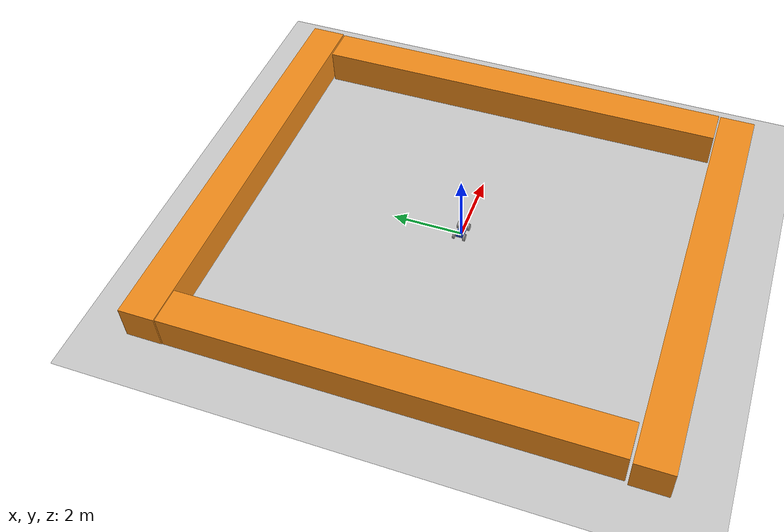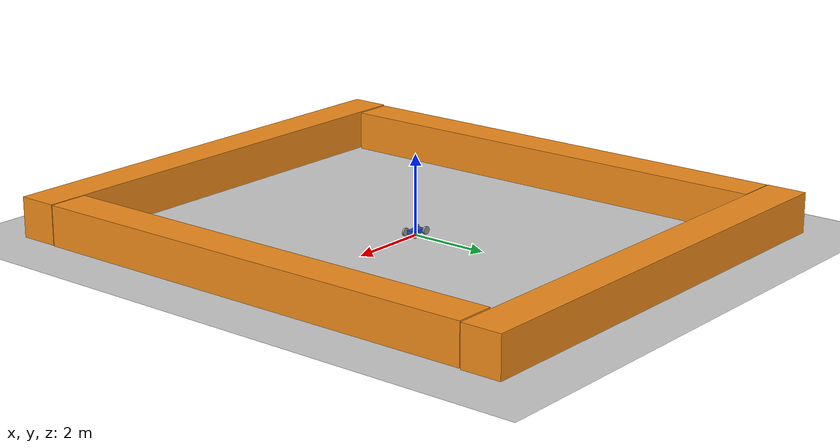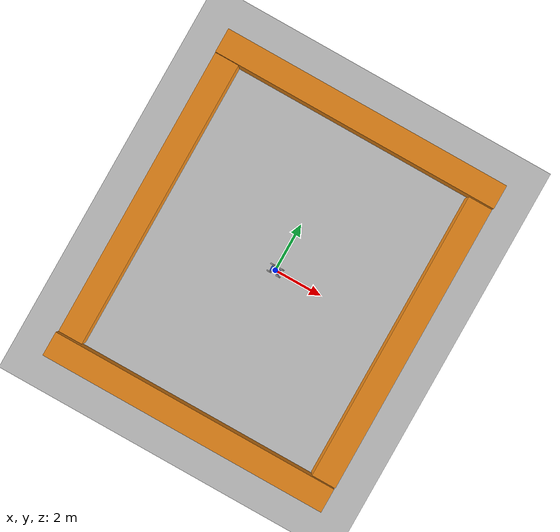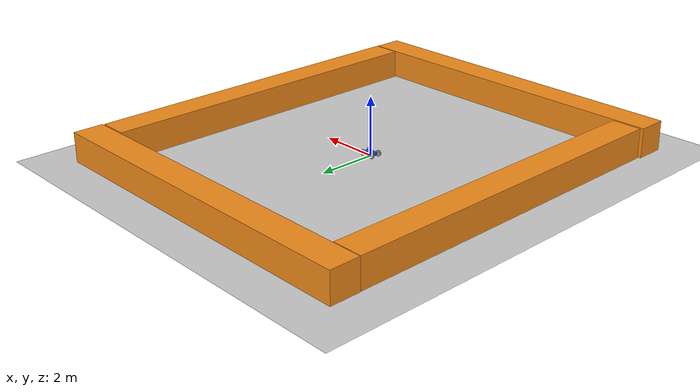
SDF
<sdf version="1.6">
 <world name="default">
  <light name="sun" type="directional">
   <pose>0 0 10 0 -0 0</pose>
   <diffuse>0.8 0.8 0.8 1</diffuse>
   <specular>0.2 0.2 0.2 1</specular>
   <attenuation>
    <range>1000</range>
    <constant>0.9</constant>
    <linear>0.01</linear>
    <quadratic>0.001</quadratic>
   </attenuation>
   <direction>-0.5 0.1 -0.9</direction>
  </light>
  <model name="ground_plane">
   <static>1</static>
   <link name="link">
    <collision name="collision">
     <geometry><plane><normal>0 0 1</normal><size>100 100</size></plane></geometry>
     <surface>
      <contact><collide_bitmask>65535</collide_bitmask></contact>
      <friction><ode><mu>100</mu><mu2>50</mu2></ode></friction>
     </surface>
    </collision>
    <visual name="visual">
     <cast_shadows>0</cast_shadows>
     <geometry><plane><normal>0 0 1</normal><size>100 100</size></plane></geometry>
     <material>
      <script><uri>file://media/materials/scripts/gazebo.material</uri><name>Gazebo/Grey</name></script>
     </material>
    </visual>
   </link>
  </model>
  <gravity>0 0 -9.8</gravity>
  <magnetic_field>6e-06 2.3e-05 -4.2e-05</magnetic_field>
  <atmosphere type="adiabatic"/>
  <physics name="default_physics" default="0" type="ode">
   <max_step_size>0.001</max_step_size>
   <real_time_factor>1</real_time_factor>
   <real_time_update_rate>1000</real_time_update_rate>
  </physics>
  <scene><ambient>0.4 0.4 0.4 1</ambient><background>0.7 0.7 0.7 1</background><shadows>1</shadows></scene>
  <audio><device>default</device></audio>
  <spherical_coordinates>
   <surface_model>EARTH_WGS84</surface_model>
   <latitude_deg>0</latitude_deg>
   <longitude_deg>0</longitude_deg>
   <elevation>0</elevation>
   <heading_deg>0</heading_deg>
  </spherical_coordinates>
  <model name="mybot">
   <link name="chassis">
    <inertial>
     <pose>0 0 0.1 0 -0 0</pose>
     <mass>10</mass>
     <inertia>
      <ixx>0.500005</ixx>
      <ixy>-1.99999e-08</ixy>
      <ixz>4.99996e-08</ixz>
      <iyy>1.00001</iyy>
      <iyz>4.19998e-08</iyz>
      <izz>0.100006</izz>
     </inertia>
    </inertial>
    <collision name="chassis_fixed_joint_lump__collision_collision">
     <geometry><box><size>0.4 0.2 0.1</size></box></geometry>
    </collision>
    <collision name="chassis_fixed_joint_lump__imu_link_collision_1">
     <pose>0.1 0.02 0.05 3.14159 1.57079 3.14159</pose>
     <geometry><box><size>0.01 0.01 0.01</size></box></geometry>
    </collision>
    <collision name="chassis_fixed_joint_lump__base_ir_back_collision_2">
     <pose>-0.2 0.02 0.02 0 0 -3.14</pose>
     <geometry><box><size>0.01 0.01 0.01</size></box></geometry>
    </collision>
    <collision name="chassis_fixed_joint_lump__base_ir_front_collision_3">
     <pose>0.2 0.02 0.02 0 -0 0</pose>
     <geometry><box><size>0.01 0.01 0.01</size></box></geometry>
    </collision>
    <collision name="chassis_fixed_joint_lump__base_ir_side1_collision_4">
     <pose>0 0.1 0.02 0 -0 1.57</pose>
     <geometry><box><size>0.01 0.01 0.01</size></box></geometry>
    </collision>
    <collision name="chassis_fixed_joint_lump__base_ir_side2_collision_5">
     <pose>0 -0.1 0.02 0 0 -1.57</pose>
     <geometry><box><size>0.01 0.01 0.01</size></box></geometry>
    </collision>
    <visual name="chassis_visual_visual">
     <geometry><box><size>0.4 0.2 0.1</size></box></geometry>
     <material>
      <script><name>Gazebo/Blue</name><uri>file://media/materials/scripts/gazebo.material</uri></script>
     </material>
    </visual>
    <visual name="chassis_fixed_joint_lump__imu_link_visual_1">
     <pose>0.1 0.02 0.05 3.14159 1.57079 3.14159</pose>
     <geometry><box><size>0.01 0.01 0.01</size></box></geometry>
     <material><script><uri>__default__</uri><name>__default__</name></script></material>
    </visual>
    <visual name="chassis_fixed_joint_lump__base_ir_back_visual_2">
     <pose>-0.2 0.02 0.02 0 0 -3.14</pose>
     <geometry><box><size>0.01 0.01 0.01</size></box></geometry>
     <material><script><uri>__default__</uri><name>__default__</name></script></material>
    </visual>
    <visual name="chassis_fixed_joint_lump__base_ir_front_visual_3">
     <pose>0.2 0.02 0.02 0 -0 0</pose>
     <geometry><box><size>0.01 0.01 0.01</size></box></geometry>
     <material><script><uri>__default__</uri><name>__default__</name></script></material>
    </visual>
    <visual name="chassis_fixed_joint_lump__base_ir_side1_visual_4">
     <pose>0 0.1 0.02 0 -0 1.57</pose>
     <geometry><box><size>0.01 0.01 0.01</size></box></geometry>
     <material><script><uri>__default__</uri><name>__default__</name></script></material>
    </visual>
    <visual name="chassis_fixed_joint_lump__base_ir_side2_visual_5">
     <pose>0 -0.1 0.02 0 0 -1.57</pose>
     <geometry><box><size>0.01 0.01 0.01</size></box></geometry>
     <material><script><uri>__default__</uri><name>__default__</name></script></material>
    </visual>
    <sensor name="imu_sensor" type="imu">
     <always_on>1</always_on>
     <update_rate>1000</update_rate>
     <visualize>1</visualize>
     <topic>/imu</topic>
     <plugin name="imu_plugin" filename="libgazebo_ros_imu_sensor.so">
      <topicName>/imu</topicName>
      <bodyName>imu_link</bodyName>
      <updateRateHZ>100.0</updateRateHZ>
      <gaussianNoise>0.0</gaussianNoise>
      <xyzOffset>0 0 0</xyzOffset>
      <rpyOffset>0 0 0</rpyOffset>
      <frameName>imu_link</frameName>
      <initialOrientationAsReference>0</initialOrientationAsReference>
      <robotNamespace>/</robotNamespace>
     </plugin>
     <pose>0.1 0.02 0.05 3.14159 1.57079 3.14159</pose>
    </sensor>
    <sensor name="TeraRanger2" type="ray">
     <visualize>1</visualize>
     <update_rate>50</update_rate>
     <ray>
      <scan>
       <horizontal>
        <samples>10</samples>
        <resolution>1</resolution>
        <min_angle>-0.14835</min_angle>
        <max_angle>0.14835</max_angle>
       </horizontal>
       <vertical>
        <samples>10</samples>
        <resolution>1</resolution>
        <min_angle>-0.14835</min_angle>
        <max_angle>0.14835</max_angle>
       </vertical>
      </scan>
      <range><min>0.01</min><max>2</max><resolution>0.02</resolution></range>
     </ray>
     <plugin name="gazebo_ros_range" filename="libgazebo_ros_range.so">
      <gaussianNoise>0.005</gaussianNoise>
      <alwaysOn>1</alwaysOn>
      <updateRate>50</updateRate>
      <topicName>sensor/ir_back</topicName>
      <frameName>base_ir_back</frameName>
      <radiation>INFRARED</radiation>
      <fov>0.2967</fov>
      <robotNamespace>/</robotNamespace>
     </plugin>
     <pose>-0.2 0.02 0.02 0 0 -3.14</pose>
    </sensor>
    <sensor name="TeraRanger" type="ray">
     <visualize>1</visualize>
     <update_rate>50</update_rate>
     <ray>
      <scan>
       <horizontal>
        <samples>10</samples>
        <resolution>1</resolution>
        <min_angle>-0.14835</min_angle>
        <max_angle>0.14835</max_angle>
       </horizontal>
       <vertical>
        <samples>10</samples>
        <resolution>1</resolution>
        <min_angle>-0.14835</min_angle>
        <max_angle>0.14835</max_angle>
       </vertical>
      </scan>
      <range><min>0.01</min><max>2</max><resolution>0.02</resolution></range>
     </ray>
     <plugin name="gazebo_ros_range" filename="libgazebo_ros_range.so">
      <gaussianNoise>0.005</gaussianNoise>
      <alwaysOn>1</alwaysOn>
      <updateRate>50</updateRate>
      <topicName>sensor/ir_front</topicName>
      <frameName>base_ir_front</frameName>
      <radiation>INFRARED</radiation>
      <fov>0.2967</fov>
      <robotNamespace>/</robotNamespace>
     </plugin>
     <pose>0.2 0.02 0.02 0 -0 0</pose>
    </sensor>
    <sensor name="TeraRanger3" type="ray">
     <visualize>1</visualize>
     <update_rate>50</update_rate>
     <ray>
      <scan>
       <horizontal>
        <samples>10</samples>
        <resolution>1</resolution>
        <min_angle>-0.14835</min_angle>
        <max_angle>0.14835</max_angle>
       </horizontal>
       <vertical>
        <samples>10</samples>
        <resolution>1</resolution>
        <min_angle>-0.14835</min_angle>
        <max_angle>0.14835</max_angle>
       </vertical>
      </scan>
      <range><min>0.01</min><max>2</max><resolution>0.02</resolution></range>
     </ray>
     <plugin name="gazebo_ros_range" filename="libgazebo_ros_range.so">
      <gaussianNoise>0.005</gaussianNoise>
      <alwaysOn>1</alwaysOn>
      <updateRate>50</updateRate>
      <topicName>sensor/ir_side1</topicName>
      <frameName>base_ir_side1</frameName>
      <radiation>INFRARED</radiation>
      <fov>0.2967</fov>
      <robotNamespace>/</robotNamespace>
     </plugin>
     <pose>0 0.1 0.02 0 -0 1.57</pose>
    </sensor>
    <sensor name="TeraRanger4" type="ray">
     <visualize>1</visualize>
     <update_rate>50</update_rate>
     <ray>
      <scan>
       <horizontal>
        <samples>10</samples>
        <resolution>1</resolution>
        <min_angle>-0.14835</min_angle>
        <max_angle>0.14835</max_angle>
       </horizontal>
       <vertical>
        <samples>10</samples>
        <resolution>1</resolution>
        <min_angle>-0.14835</min_angle>
        <max_angle>0.14835</max_angle>
       </vertical>
      </scan>
      <range><min>0.01</min><max>2</max><resolution>0.02</resolution></range>
     </ray>
     <plugin name="gazebo_ros_range" filename="libgazebo_ros_range.so">
      <gaussianNoise>0.005</gaussianNoise>
      <alwaysOn>1</alwaysOn>
      <updateRate>50</updateRate>
      <topicName>sensor/ir_side2</topicName>
      <frameName>base_ir_side2</frameName>
      <radiation>INFRARED</radiation>
      <fov>0.2967</fov>
      <robotNamespace>/</robotNamespace>
     </plugin>
     <pose>0 -0.1 0.02 0 0 -1.57</pose>
    </sensor>
   </link>
   <link name="left_wheel_front">
    <pose>-0.2 0.15 0 0 -0 0</pose>
    <inertial>
     <pose>0 0 0 -0 1.5707 1.5707</pose>
     <mass>5</mass>
     <inertia><ixx>1</ixx><ixy>0</ixy><ixz>0</ixz><iyy>1</iyy><iyz>0</iyz><izz>1</izz></inertia>
    </inertial>
    <collision name="left_wheel_front_fixed_joint_lump__collision_collision">
     <pose>0 0 0 3.14159 1.57079 -1.57089</pose>
     <geometry><cylinder><length>0.05</length><radius>0.1</radius></cylinder></geometry>
    </collision>
    <visual name="left_wheel_front_visual_visual">
     <pose>0 0 0 3.14159 1.57079 -1.57089</pose>
     <geometry><cylinder><length>0.05</length><radius>0.1</radius></cylinder></geometry>
     <material>
      <script><name>Gazebo/Grey</name><uri>file://media/materials/scripts/gazebo.material</uri></script>
     </material>
    </visual>
   </link>
   <joint name="left_wheel_front_hinge" type="revolute">
    <child>left_wheel_front</child>
    <parent>chassis</parent>
    <axis>
     <xyz>0 1 0</xyz>
     <limit><lower>-1e+16</lower><upper>1e+16</upper></limit>
     <dynamics><spring_reference>0</spring_reference><spring_stiffness>0</spring_stiffness></dynamics>
     <use_parent_model_frame>1</use_parent_model_frame>
    </axis>
   </joint>
   <link name="left_wheel">
    <pose>0.2 0.15 0 0 -0 0</pose>
    <inertial>
     <pose>0 0 0 -0 1.5707 1.5707</pose>
     <mass>5</mass>
     <inertia><ixx>1</ixx><ixy>0</ixy><ixz>0</ixz><iyy>1</iyy><iyz>0</iyz><izz>1</izz></inertia>
    </inertial>
    <collision name="left_wheel_fixed_joint_lump__collision_collision">
     <pose>0 0 0 3.14159 1.57079 -1.57089</pose>
     <geometry><cylinder><length>0.05</length><radius>0.1</radius></cylinder></geometry>
    </collision>
    <visual name="left_wheel_visual_visual">
     <pose>0 0 0 3.14159 1.57079 -1.57089</pose>
     <geometry><cylinder><length>0.05</length><radius>0.1</radius></cylinder></geometry>
     <material>
      <script><name>Gazebo/Grey</name><uri>file://media/materials/scripts/gazebo.material</uri></script>
     </material>
    </visual>
   </link>
   <joint name="left_wheel_hinge" type="revolute">
    <child>left_wheel</child>
    <parent>chassis</parent>
    <axis>
     <xyz>0 1 0</xyz>
     <limit><lower>-1e+16</lower><upper>1e+16</upper></limit>
     <dynamics><spring_reference>0</spring_reference><spring_stiffness>0</spring_stiffness></dynamics>
     <use_parent_model_frame>1</use_parent_model_frame>
    </axis>
   </joint>
   <link name="right_wheel_front">
    <pose>-0.2 -0.15 0 0 -0 0</pose>
    <inertial>
     <pose>0 0 0 -0 1.5707 1.5707</pose>
     <mass>5</mass>
     <inertia><ixx>1</ixx><ixy>0</ixy><ixz>0</ixz><iyy>1</iyy><iyz>0</iyz><izz>1</izz></inertia>
    </inertial>
    <collision name="right_wheel_front_fixed_joint_lump__collision_collision">
     <pose>0 0 0 3.14159 1.57079 -1.57089</pose>
     <geometry><cylinder><length>0.05</length><radius>0.1</radius></cylinder></geometry>
    </collision>
    <visual name="right_wheel_front_visual_visual">
     <pose>0 0 0 3.14159 1.57079 -1.57089</pose>
     <geometry><cylinder><length>0.05</length><radius>0.1</radius></cylinder></geometry>
     <material>
      <script><name>Gazebo/Grey</name><uri>file://media/materials/scripts/gazebo.material</uri></script>
     </material>
    </visual>
   </link>
   <joint name="right_wheel_front_hinge" type="revolute">
    <child>right_wheel_front</child>
    <parent>chassis</parent>
    <axis>
     <xyz>0 1 0</xyz>
     <limit><lower>-1e+16</lower><upper>1e+16</upper></limit>
     <dynamics><spring_reference>0</spring_reference><spring_stiffness>0</spring_stiffness></dynamics>
     <use_parent_model_frame>1</use_parent_model_frame>
    </axis>
   </joint>
   <link name="right_wheel">
    <pose>0.2 -0.15 0 0 -0 0</pose>
    <inertial>
     <pose>0 0 0 -0 1.5707 1.5707</pose>
     <mass>5</mass>
     <inertia><ixx>1</ixx><ixy>0</ixy><ixz>0</ixz><iyy>1</iyy><iyz>0</iyz><izz>1</izz></inertia>
    </inertial>
    <collision name="right_wheel_fixed_joint_lump__collision_collision">
     <pose>0 0 0 3.14159 1.57079 -1.57089</pose>
     <geometry><cylinder><length>0.05</length><radius>0.1</radius></cylinder></geometry>
    </collision>
    <visual name="right_wheel_visual_visual">
     <pose>0 0 0 3.14159 1.57079 -1.57089</pose>
     <geometry><cylinder><length>0.05</length><radius>0.1</radius></cylinder></geometry>
     <material>
      <script><name>Gazebo/Grey</name><uri>file://media/materials/scripts/gazebo.material</uri></script>
     </material>
    </visual>
   </link>
   <joint name="right_wheel_hinge" type="revolute">
    <child>right_wheel</child>
    <parent>chassis</parent>
    <axis>
     <xyz>0 1 0</xyz>
     <limit><lower>-1e+16</lower><upper>1e+16</upper></limit>
     <dynamics><spring_reference>0</spring_reference><spring_stiffness>0</spring_stiffness></dynamics>
     <use_parent_model_frame>1</use_parent_model_frame>
    </axis>
   </joint>
   <static>0</static>
   <plugin name="skid_steer_drive_controller" filename="libgazebo_ros_skid_steer_drive.so">
    <updateRate>1000.0</updateRate>
    <robotNamespace>/</robotNamespace>
    <leftFrontJoint>left_wheel_front_hinge</leftFrontJoint>
    <rightFrontJoint>right_wheel_front_hinge</rightFrontJoint>
    <leftRearJoint>left_wheel_hinge</leftRearJoint>
    <rightRearJoint>right_wheel_hinge</rightRearJoint>
    <wheelSeparation>0.4</wheelSeparation>
    <wheelDiameter>0.15</wheelDiameter>
    <robotBaseFrame>chassis</robotBaseFrame>
    <torque>20</torque>
    <topicName>cmd_vel</topicName>
    <broadcastTF>0</broadcastTF>
   </plugin>
   <pose>-4.2e-05 9.2e-05 0.1 2e-06 -1e-06 0.000168</pose>
  </model>
  <model name="test1">
   <link name="link_0">
    <inertial>
     <mass>1</mass>
     <inertia>
      <ixx>0.166667</ixx>
      <ixy>0</ixy>
      <ixz>0</ixz>
      <iyy>0.166667</iyy>
      <iyz>0</iyz>
      <izz>0.166667</izz>
     </inertia>
    </inertial>
    <pose>-0.026567 -6.55609 0 0 -0 0</pose>
    <visual name="visual">
     <geometry><box><size>12 1 1</size></box></geometry>
     <material>
      <lighting>1</lighting>
      <script><uri>file://media/materials/scripts/gazebo.material</uri><name>Gazebo/Orange</name></script>
      <shader type="vertex"><normal_map>__default__</normal_map></shader>
      <ambient>1 0.3 0.3 1</ambient>
      <diffuse>0.4 0.7 0.7 1</diffuse>
      <specular>0.01 0.01 0.01 1</specular>
      <emissive>0 0 0 1</emissive>
     </material>
    </visual>
    <collision name="collision">
     <geometry><box><size>12 1 1</size></box></geometry>
     <surface>
      <friction>
       <ode><mu>1</mu><mu2>1</mu2><fdir1>0 0 0</fdir1><slip1>0</slip1><slip2>0</slip2></ode>
       <torsional>
        <coefficient>1</coefficient>
        <patch_radius>0</patch_radius>
        <surface_radius>0</surface_radius>
        <use_patch_radius>1</use_patch_radius>
        <ode><slip>0</slip></ode>
       </torsional>
      </friction>
      <bounce><restitution_coefficient>0</restitution_coefficient><threshold>1e+06</threshold></bounce>
      <contact>
       <collide_without_contact>0</collide_without_contact>
       <collide_without_contact_bitmask>1</collide_without_contact_bitmask>
       <collide_bitmask>1</collide_bitmask>
       <ode>
        <soft_cfm>0</soft_cfm>
        <soft_erp>0.2</soft_erp>
        <kp>1e+13</kp>
        <kd>1</kd>
        <max_vel>0.01</max_vel>
        <min_depth>0</min_depth>
       </ode>
       <bullet>
        <split_impulse>1</split_impulse>
        <split_impulse_penetration_threshold>-0.01</split_impulse_penetration_threshold>
        <soft_cfm>0</soft_cfm>
        <soft_erp>0.2</soft_erp>
        <kp>1e+13</kp>
        <kd>1</kd>
       </bullet>
      </contact>
     </surface>
    </collision>
   </link>
   <link name="link_0_clone">
    <inertial>
     <mass>1</mass>
     <inertia>
      <ixx>0.166667</ixx>
      <ixy>0</ixy>
      <ixz>0</ixz>
      <iyy>0.166667</iyy>
      <iyz>0</iyz>
      <izz>0.166667</izz>
     </inertia>
    </inertial>
    <pose>0.009884 6.54398 0 0 -0 0</pose>
    <visual name="visual">
     <geometry><box><size>12 1 1</size></box></geometry>
     <material>
      <lighting>1</lighting>
      <script><uri>file://media/materials/scripts/gazebo.material</uri><name>Gazebo/Orange</name></script>
      <shader type="vertex"><normal_map>__default__</normal_map></shader>
      <ambient>1 0.3 0.3 1</ambient>
      <diffuse>0.4 0.7 0.7 1</diffuse>
      <specular>0.01 0.01 0.01 1</specular>
      <emissive>0 0 0 1</emissive>
     </material>
    </visual>
    <collision name="collision">
     <geometry><box><size>12 1 1</size></box></geometry>
     <surface>
      <friction>
       <ode><mu>1</mu><mu2>1</mu2><fdir1>0 0 0</fdir1><slip1>0</slip1><slip2>0</slip2></ode>
       <torsional>
        <coefficient>1</coefficient>
        <patch_radius>0</patch_radius>
        <surface_radius>0</surface_radius>
        <use_patch_radius>1</use_patch_radius>
        <ode><slip>0</slip></ode>
       </torsional>
      </friction>
      <bounce><restitution_coefficient>0</restitution_coefficient><threshold>1e+06</threshold></bounce>
      <contact>
       <collide_without_contact>0</collide_without_contact>
       <collide_without_contact_bitmask>1</collide_without_contact_bitmask>
       <collide_bitmask>1</collide_bitmask>
       <ode>
        <soft_cfm>0</soft_cfm>
        <soft_erp>0.2</soft_erp>
        <kp>1e+13</kp>
        <kd>1</kd>
        <max_vel>0.01</max_vel>
        <min_depth>0</min_depth>
       </ode>
       <bullet>
        <split_impulse>1</split_impulse>
        <split_impulse_penetration_threshold>-0.01</split_impulse_penetration_threshold>
        <soft_cfm>0</soft_cfm>
        <soft_erp>0.2</soft_erp>
        <kp>1e+13</kp>
        <kd>1</kd>
       </bullet>
      </contact>
     </surface>
    </collision>
   </link>
   <link name="link_0_clone_0">
    <inertial>
     <mass>1</mass>
     <inertia>
      <ixx>0.166667</ixx>
      <ixy>0</ixy>
      <ixz>0</ixz>
      <iyy>0.166667</iyy>
      <iyz>0</iyz>
      <izz>0.166667</izz>
     </inertia>
    </inertial>
    <pose>5.48182 -0.010748 0 0 -0 1.57273</pose>
    <visual name="visual">
     <geometry><box><size>12 1 1</size></box></geometry>
     <material>
      <lighting>1</lighting>
      <script><uri>file://media/materials/scripts/gazebo.material</uri><name>Gazebo/Orange</name></script>
      <shader type="vertex"><normal_map>__default__</normal_map></shader>
      <ambient>1 0.3 0.3 1</ambient>
      <diffuse>0.4 0.7 0.7 1</diffuse>
      <specular>0.1 0.01 0.01 1</specular>
      <emissive>0 0 0 1</emissive>
     </material>
    </visual>
    <collision name="collision">
     <geometry><box><size>12 1 1</size></box></geometry>
     <surface>
      <friction>
       <ode><mu>1</mu><mu2>1</mu2><fdir1>0 0 0</fdir1><slip1>0</slip1><slip2>0</slip2></ode>
       <torsional>
        <coefficient>1</coefficient>
        <patch_radius>0</patch_radius>
        <surface_radius>0</surface_radius>
        <use_patch_radius>1</use_patch_radius>
        <ode><slip>0</slip></ode>
       </torsional>
      </friction>
      <bounce><restitution_coefficient>0</restitution_coefficient><threshold>1e+06</threshold></bounce>
      <contact>
       <collide_without_contact>0</collide_without_contact>
       <collide_without_contact_bitmask>1</collide_without_contact_bitmask>
       <collide_bitmask>1</collide_bitmask>
       <ode>
        <soft_cfm>0</soft_cfm>
        <soft_erp>0.2</soft_erp>
        <kp>1e+13</kp>
        <kd>1</kd>
        <max_vel>0.01</max_vel>
        <min_depth>0</min_depth>
       </ode>
       <bullet>
        <split_impulse>1</split_impulse>
        <split_impulse_penetration_threshold>-0.01</split_impulse_penetration_threshold>
        <soft_cfm>0</soft_cfm>
        <soft_erp>0.2</soft_erp>
        <kp>1e+13</kp>
        <kd>1</kd>
       </bullet>
      </contact>
     </surface>
    </collision>
   </link>
   <link name="link_0_clone_0_clone">
    <inertial>
     <mass>1</mass>
     <inertia>
      <ixx>0.166667</ixx>
      <ixy>0</ixy>
      <ixz>0</ixz>
      <iyy>0.166667</iyy>
      <iyz>0</iyz>
      <izz>0.166667</izz>
     </inertia>
    </inertial>
    <pose>-5.46514 0.022863 0 0 -0 1.57273</pose>
    <visual name="visual">
     <geometry><box><size>12 1 1</size></box></geometry>
     <material>
      <lighting>1</lighting>
      <script><uri>file://media/materials/scripts/gazebo.material</uri><name>Gazebo/Orange</name></script>
      <shader type="vertex"><normal_map>__default__</normal_map></shader>
      <ambient>1 0.3 0.3 1</ambient>
      <diffuse>0.4 0.7 0.7 1</diffuse>
      <specular>0.01 0.01 0.01 1</specular>
      <emissive>0 0 0 1</emissive>
     </material>
    </visual>
    <collision name="collision">
     <geometry><box><size>12 1 1</size></box></geometry>
     <surface>
      <friction>
       <ode><mu>1</mu><mu2>1</mu2><fdir1>0 0 0</fdir1><slip1>0</slip1><slip2>0</slip2></ode>
       <torsional>
        <coefficient>1</coefficient>
        <patch_radius>0</patch_radius>
        <surface_radius>0</surface_radius>
        <use_patch_radius>1</use_patch_radius>
        <ode><slip>0</slip></ode>
       </torsional>
      </friction>
      <bounce><restitution_coefficient>0</restitution_coefficient><threshold>1e+06</threshold></bounce>
      <contact>
       <collide_without_contact>0</collide_without_contact>
       <collide_without_contact_bitmask>1</collide_without_contact_bitmask>
       <collide_bitmask>1</collide_bitmask>
       <ode>
        <soft_cfm>0</soft_cfm>
        <soft_erp>0.2</soft_erp>
        <kp>1e+13</kp>
        <kd>1</kd>
        <max_vel>0.01</max_vel>
        <min_depth>0</min_depth>
       </ode>
       <bullet>
        <split_impulse>1</split_impulse>
        <split_impulse_penetration_threshold>-0.01</split_impulse_penetration_threshold>
        <soft_cfm>0</soft_cfm>
        <soft_erp>0.2</soft_erp>
        <kp>1e+13</kp>
        <kd>1</kd>
       </bullet>
      </contact>
     </surface>
    </collision>
   </link>
   <static>0</static>
   <pose>-0.010642 -0.010188 0.5 0 -0 0</pose>
  </model>
 </world>
</sdf>
